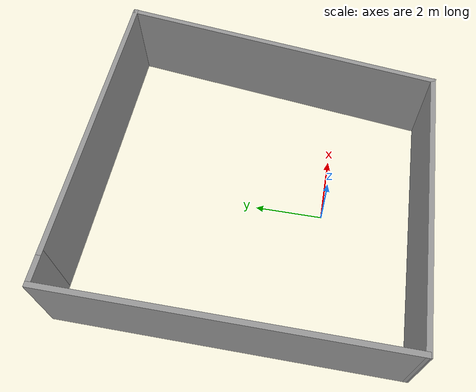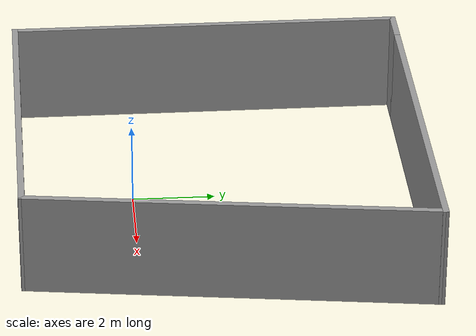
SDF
<?xml version='1.0'?>
<sdf version='1.7'>
  <model name='obstacles'>
    <pose>0.384575 2.06342 0 0 -0 0</pose>
    <link name='Wall_0'>
      <collision name='Wall_0_Collision'>
        <geometry>
          <box>
            <size>8.33529 0.15 2.5</size>
          </box>
        </geometry>
        <pose>0 0 1.25 0 -0 0</pose>
      </collision>
      <visual name='Wall_0_Visual'>
        <pose>0 0 1.25 0 -0 0</pose>
        <geometry>
          <box>
            <size>8.33529 0.15 2.5</size>
          </box>
        </geometry>
        <material>
          <script>
            <uri>file://media/materials/scripts/gazebo.material</uri>
            <name>Gazebo/Grey</name>
          </script>
          <ambient>1 1 1 1</ambient>
        </material>
        <meta>
          <layer>0</layer>
        </meta>
      </visual>
      <pose>-0.636871 -4.78144 0 0 -0 0.009291</pose>
    </link>
    <link name='Wall_2'>
      <collision name='Wall_2_Collision'>
        <geometry>
          <box>
            <size>9.75 0.15 2.5</size>
          </box>
        </geometry>
        <pose>0 0 1.25 0 -0 0</pose>
      </collision>
      <visual name='Wall_2_Visual'>
        <pose>0 0 1.25 0 -0 0</pose>
        <geometry>
          <box>
            <size>9.75 0.15 2.5</size>
          </box>
        </geometry>
        <material>
          <script>
            <uri>file://media/materials/scripts/gazebo.material</uri>
            <name>Gazebo/Grey</name>
          </script>
          <ambient>1 1 1 1</ambient>
        </material>
        <meta>
          <layer>0</layer>
        </meta>
      </visual>
      <pose>-4.72917 0.010957 0 0 -0 1.5708</pose>
    </link>
    <link name='Wall_5'>
      <collision name='Wall_5_Collision'>
        <geometry>
          <box>
            <size>1 0.15 2.5</size>
          </box>
        </geometry>
        <pose>0 0 1.25 0 -0 0</pose>
      </collision>
      <visual name='Wall_5_Visual'>
        <pose>0 0 1.25 0 -0 0</pose>
        <geometry>
          <box>
            <size>1 0.15 2.5</size>
          </box>
        </geometry>
        <material>
          <script>
            <uri>file://media/materials/scripts/gazebo.material</uri>
            <name>Gazebo/Grey</name>
          </script>
          <ambient>1 1 1 1</ambient>
        </material>
        <meta>
          <layer>0</layer>
        </meta>
      </visual>
      <pose>-4.30417 4.81096 0 0 -0 0</pose>
    </link>
    <link name='Wall_6'>
      <collision name='Wall_6_Collision'>
        <geometry>
          <box>
            <size>8.75 0.15 2.5</size>
          </box>
        </geometry>
        <pose>0 0 1.25 0 -0 0</pose>
      </collision>
      <visual name='Wall_6_Visual'>
        <pose>0 0 1.25 0 -0 0</pose>
        <geometry>
          <box>
            <size>8.75 0.15 2.5</size>
          </box>
        </geometry>
        <material>
          <script>
            <uri>file://media/materials/scripts/gazebo.material</uri>
            <name>Gazebo/Grey</name>
          </script>
          <ambient>1 1 1 1</ambient>
        </material>
        <meta>
          <layer>0</layer>
        </meta>
      </visual>
      <pose>0.420833 4.81096 0 0 -0 0</pose>
    </link>
    <link name='Wall_7'>
      <collision name='Wall_7_Collision'>
        <geometry>
          <box>
            <size>9.78781 0.15 2.5</size>
          </box>
        </geometry>
        <pose>0 0 1.25 0 -0 0</pose>
      </collision>
      <visual name='Wall_7_Visual'>
        <pose>0 0 1.25 0 -0 0</pose>
        <geometry>
          <box>
            <size>9.78781 0.15 2.5</size>
          </box>
        </geometry>
        <material>
          <script>
            <uri>file://media/materials/scripts/gazebo.material</uri>
            <name>Gazebo/Grey</name>
          </script>
          <ambient>1 1 1 1</ambient>
        </material>
        <meta>
          <layer>0</layer>
        </meta>
      </visual>
      <pose>4.08813 0.033771 0 0 -0 -1.70247</pose>
    </link>
    <static>1</static>
  </model>
</sdf>
